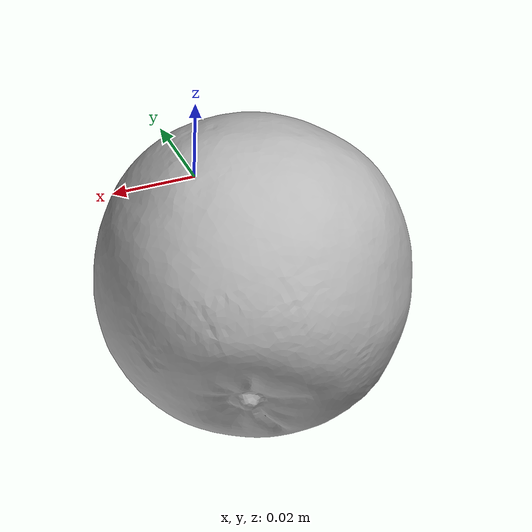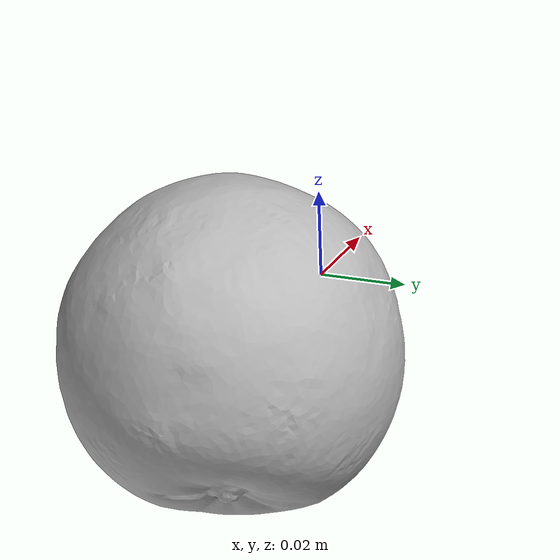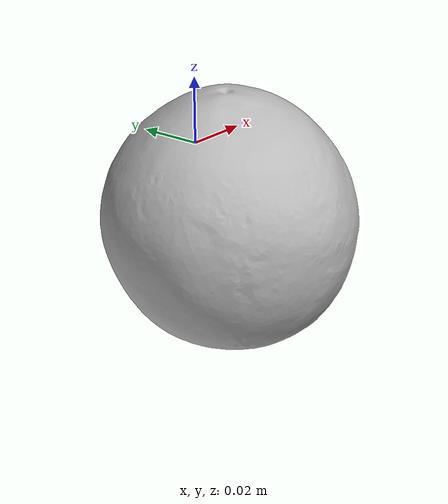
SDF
<?xml version="1.0"?>
<sdf version="1.7">
  <model name="cupd">
    <link name="base_link">
     <pose>0 0 -0.05 0 0 0</pose>
      <!-- Rough inertial properties -->
      <inertial>
        <mass>0.1</mass>
        <inertia>
          <ixx>1e-4</ixx>
          <iyy>1e-4</iyy>
          <izz>1e-4</izz>
        </inertia>
      </inertial>

      <!-- Visual mesh -->
      <visual name="visual">
        <geometry>
          <mesh>
            <uri>google_16k/textured.obj</uri>
          </mesh>
        </geometry>
      </visual>

      <!-- Collision (same mesh for simplicity) -->
      <collision name="collision">
        <geometry>
          <mesh>
            <uri>google_16k/textured.obj</uri>
          </mesh>
        </geometry>
      </collision>

    </link>
  </model>
</sdf>
